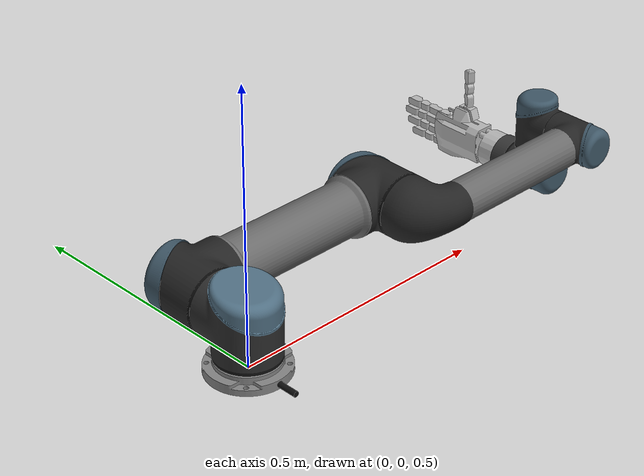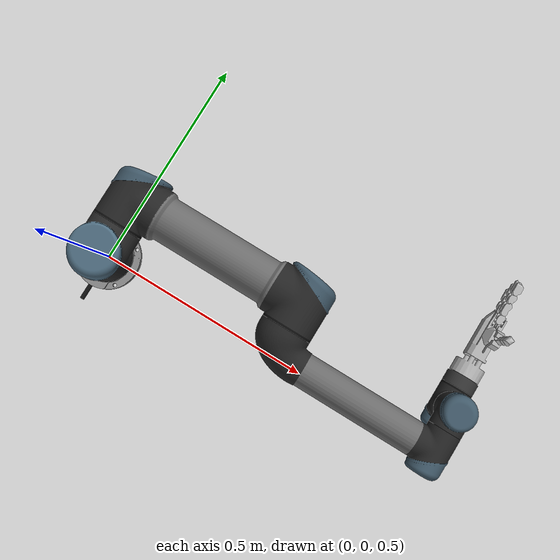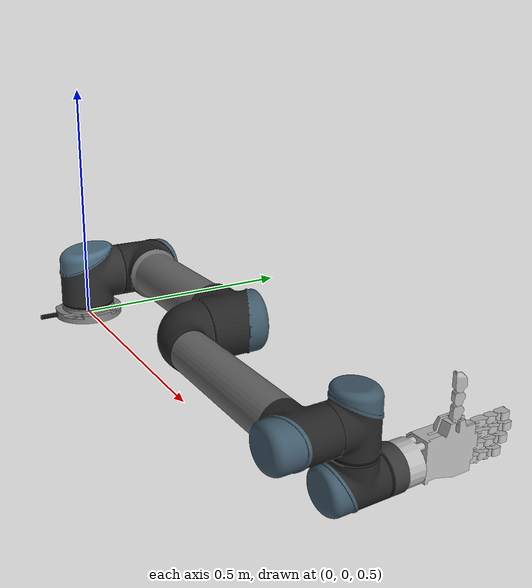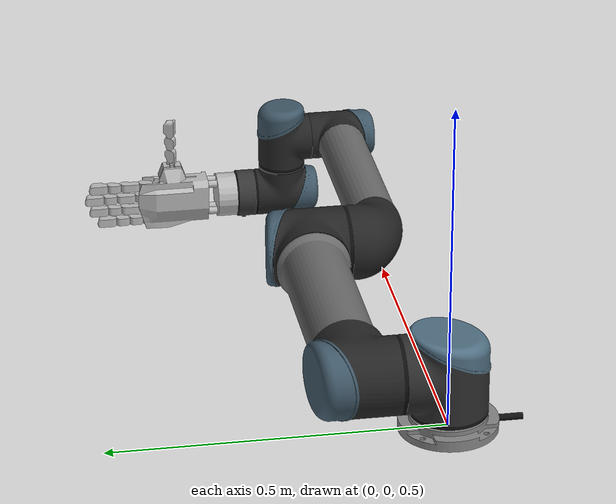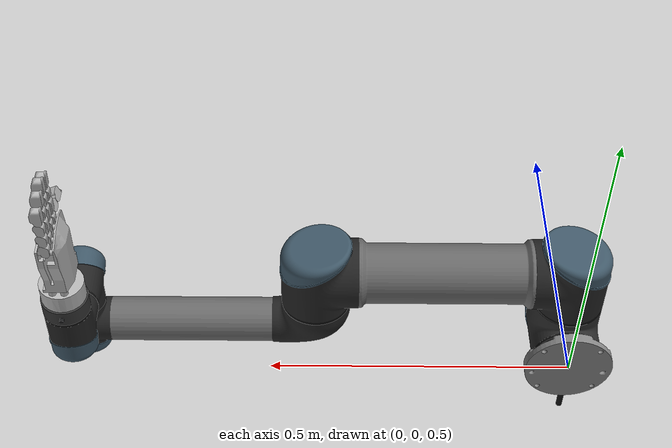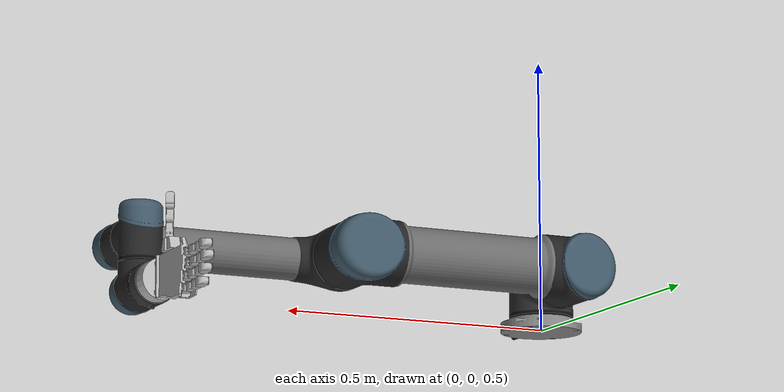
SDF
<sdf version='1.6'>
  <model name='ur5_qb'>
    <link name='base_link'>
      <pose frame=''>0 0 0.5 0 -0 0</pose>
      <inertial>
        <pose frame=''>0 0 0 0 -0 0</pose>
        <mass>4</mass>
        <inertia>
          <ixx>0.00443333</ixx>
          <ixy>0</ixy>
          <ixz>0</ixz>
          <iyy>0.00443333</iyy>
          <iyz>0</iyz>
          <izz>0.0072</izz>
        </inertia>
      </inertial>
      <collision name='base_link_collision'>
        <pose frame=''>0 0 0 0 -0 0</pose>
        <geometry>
          <mesh>
            <scale>1 1 1</scale>
            <uri>model://ur_description/meshes/ur5/collision/base.stl</uri>
          </mesh>
        </geometry>
      </collision>
      <visual name='base_link_visual'>
        <pose frame=''>0 0 0 0 -0 0</pose>
        <geometry>
          <mesh>
            <scale>1 1 1</scale>
            <uri>model://ur_description/meshes/ur5/visual/base.dae</uri>
          </mesh>
        </geometry>
      </visual>
    </link>
    <joint name='world_to_robot' type='revolute'>
      <child>base_link</child>
      <parent>world</parent>
      <axis>
        <limit>
          <lower>0</lower>
          <upper>0</upper>
        </limit>
        <dynamics>
          <damping>0</damping>
          <friction>0</friction>
          <spring_reference>0</spring_reference>
          <spring_stiffness>0</spring_stiffness>
        </dynamics>
        <use_parent_model_frame>1</use_parent_model_frame>
        <xyz>0 0 1</xyz>
      </axis>
    </joint>
    <link name='shoulder_link'>
      <pose frame=''>0 0 0.589159 0 -0 0</pose>
      <inertial>
        <pose frame=''>0 0 0 0 -0 0</pose>
        <mass>3.7</mass>
        <inertia>
          <ixx>0.0102675</ixx>
          <ixy>0</ixy>
          <ixz>0</ixz>
          <iyy>0.0102675</iyy>
          <iyz>0</iyz>
          <izz>0.00666</izz>
        </inertia>
      </inertial>
      <collision name='shoulder_link_collision'>
        <pose frame=''>0 0 0 0 -0 0</pose>
        <geometry>
          <mesh>
            <scale>1 1 1</scale>
            <uri>model://ur_description/meshes/ur5/collision/shoulder.stl</uri>
          </mesh>
        </geometry>
        <surface>
          <contact>
            <ode/>
          </contact>
          <friction>
            <ode/>
          </friction>
        </surface>
      </collision>
      <visual name='shoulder_link_visual'>
        <pose frame=''>0 0 0 0 -0 0</pose>
        <geometry>
          <mesh>
            <scale>1 1 1</scale>
            <uri>model://ur_description/meshes/ur5/visual/shoulder.dae</uri>
          </mesh>
        </geometry>
        <material>
          <script>
            <uri>__default__</uri>
            <name>__default__</name>
          </script>
        </material>
      </visual>
      <gravity>1</gravity>
      <velocity_decay/>
      <self_collide>1</self_collide>
    </link>
    <joint name='shoulder_pan_joint' type='revolute'>
      <child>shoulder_link</child>
      <parent>base_link</parent>
      <axis>
        <xyz>0 0 1</xyz>
        <limit>
          <lower>-6.28319</lower>
          <upper>6.28319</upper>
          <effort>150</effort>
          <velocity>3.15</velocity>
        </limit>
        <dynamics>
          <damping>0</damping>
          <friction>0</friction>
          <spring_reference>0</spring_reference>
          <spring_stiffness>0</spring_stiffness>
        </dynamics>
        <use_parent_model_frame>1</use_parent_model_frame>
      </axis>
    </joint>
    <link name='upper_arm_link'>
      <pose frame=''>0 0.13585 0.589159 3.14159 1.57079 3.14159</pose>
      <inertial>
        <pose frame=''>0 0 0.28 0 -0 0</pose>
        <mass>8.393</mass>
        <inertia>
          <ixx>0.226891</ixx>
          <ixy>0</ixy>
          <ixz>0</ixz>
          <iyy>0.226891</iyy>
          <iyz>0</iyz>
          <izz>0.0151074</izz>
        </inertia>
      </inertial>
      <collision name='upper_arm_link_collision'>
        <pose frame=''>0 0 0 0 -0 0</pose>
        <geometry>
          <mesh>
            <scale>1 1 1</scale>
            <uri>model://ur_description/meshes/ur5/collision/upperarm.stl</uri>
          </mesh>
        </geometry>
        <surface>
          <contact>
            <ode/>
          </contact>
          <friction>
            <ode/>
          </friction>
        </surface>
      </collision>
      <visual name='upper_arm_link_visual'>
        <pose frame=''>0 0 0 0 -0 0</pose>
        <geometry>
          <mesh>
            <scale>1 1 1</scale>
            <uri>model://ur_description/meshes/ur5/visual/upperarm.dae</uri>
          </mesh>
        </geometry>
        <material>
          <script>
            <uri>__default__</uri>
            <name>__default__</name>
          </script>
        </material>
      </visual>
      <gravity>1</gravity>
      <velocity_decay/>
      <self_collide>1</self_collide>
    </link>
    <joint name='shoulder_lift_joint' type='revolute'>
      <child>upper_arm_link</child>
      <parent>shoulder_link</parent>
      <axis>
        <xyz>0 1 0</xyz>
        <limit>
          <lower>-6.28319</lower>
          <upper>6.28319</upper>
          <effort>150</effort>
          <velocity>3.15</velocity>
        </limit>
        <dynamics>
          <damping>0</damping>
          <friction>0</friction>
          <spring_reference>0</spring_reference>
          <spring_stiffness>0</spring_stiffness>
        </dynamics>
        <use_parent_model_frame>1</use_parent_model_frame>
      </axis>
    </joint>
    <link name='forearm_link'>
      <pose frame=''>0.425 0.01615 0.589159 3.14159 1.57079 3.14159</pose>
      <inertial>
        <pose frame=''>0 0 0.196125 0 -0 0</pose>
        <mass>2.275</mass>
        <inertia>
          <ixx>0.0312168</ixx>
          <ixy>0</ixy>
          <ixz>0</ixz>
          <iyy>0.0312168</iyy>
          <iyz>0</iyz>
          <izz>0.004095</izz>
        </inertia>
      </inertial>
      <collision name='forearm_link_collision'>
        <pose frame=''>0 0 0 0 -0 0</pose>
        <geometry>
          <mesh>
            <scale>1 1 1</scale>
            <uri>model://ur_description/meshes/ur5/collision/forearm.stl</uri>
          </mesh>
        </geometry>
        <surface>
          <contact>
            <ode/>
          </contact>
          <friction>
            <ode/>
          </friction>
        </surface>
      </collision>
      <visual name='forearm_link_visual'>
        <pose frame=''>0 0 0 0 -0 0</pose>
        <geometry>
          <mesh>
            <scale>1 1 1</scale>
            <uri>model://ur_description/meshes/ur5/visual/forearm.dae</uri>
          </mesh>
        </geometry>
        <material>
          <script>
            <uri>__default__</uri>
            <name>__default__</name>
          </script>
        </material>
      </visual>
      <gravity>1</gravity>
      <velocity_decay/>
      <self_collide>1</self_collide>
    </link>
    <joint name='elbow_joint' type='revolute'>
      <child>forearm_link</child>
      <parent>upper_arm_link</parent>
      <axis>
        <xyz>0 1 0</xyz>
        <limit>
          <lower>-3.14159</lower>
          <upper>3.14159</upper>
          <effort>150</effort>
          <velocity>3.15</velocity>
        </limit>
        <dynamics>
          <damping>0</damping>
          <friction>0</friction>
          <spring_reference>0</spring_reference>
          <spring_stiffness>0</spring_stiffness>
        </dynamics>
        <use_parent_model_frame>1</use_parent_model_frame>
      </axis>
    </joint>
    <link name='wrist_1_link'>
      <pose frame=''>0.81725 0.01615 0.589159 3.14159 0 3.14159</pose>
      <inertial>
        <pose frame=''>0 0.093 0 0 -0 0</pose>
        <mass>1.219</mass>
        <inertia>
          <ixx>0.0025599</ixx>
          <ixy>0</ixy>
          <ixz>0</ixz>
          <iyy>0.0025599</iyy>
          <iyz>0</iyz>
          <izz>0.0021942</izz>
        </inertia>
      </inertial>
      <collision name='wrist_1_link_collision'>
        <pose frame=''>0 0 0 0 -0 0</pose>
        <geometry>
          <mesh>
            <scale>1 1 1</scale>
            <uri>model://ur_description/meshes/ur5/collision/wrist1.stl</uri>
          </mesh>
        </geometry>
        <surface>
          <contact>
            <ode/>
          </contact>
          <friction>
            <ode/>
          </friction>
        </surface>
      </collision>
      <visual name='wrist_1_link_visual'>
        <pose frame=''>0 0 0 0 -0 0</pose>
        <geometry>
          <mesh>
            <scale>1 1 1</scale>
            <uri>model://ur_description/meshes/ur5/visual/wrist1.dae</uri>
          </mesh>
        </geometry>
        <material>
          <script>
            <uri>__default__</uri>
            <name>__default__</name>
          </script>
        </material>
      </visual>
      <gravity>1</gravity>
      <velocity_decay/>
      <self_collide>1</self_collide>
    </link>
    <joint name='wrist_1_joint' type='revolute'>
      <child>wrist_1_link</child>
      <parent>forearm_link</parent>
      <axis>
        <xyz>0 1 0</xyz>
        <limit>
          <lower>-6.28319</lower>
          <upper>6.28319</upper>
          <effort>28</effort>
          <velocity>3.2</velocity>
        </limit>
        <dynamics>
          <damping>0</damping>
          <friction>0</friction>
          <spring_reference>0</spring_reference>
          <spring_stiffness>0</spring_stiffness>
        </dynamics>
        <use_parent_model_frame>1</use_parent_model_frame>
      </axis>
    </joint>
    <link name='wrist_2_link'>
      <pose frame=''>0.81725 0.10915 0.589159 3.14159 0 3.14159</pose>
      <inertial>
        <pose frame=''>0 0 0.09465 0 -0 0</pose>
        <mass>1.219</mass>
        <inertia>
          <ixx>0.0025599</ixx>
          <ixy>0</ixy>
          <ixz>0</ixz>
          <iyy>0.0025599</iyy>
          <iyz>0</iyz>
          <izz>0.0021942</izz>
        </inertia>
      </inertial>
      <collision name='wrist_2_link_collision'>
        <pose frame=''>0 0 0 0 -0 0</pose>
        <geometry>
          <mesh>
            <scale>1 1 1</scale>
            <uri>model://ur_description/meshes/ur5/collision/wrist2.stl</uri>
          </mesh>
        </geometry>
        <surface>
          <contact>
            <ode/>
          </contact>
          <friction>
            <ode/>
          </friction>
        </surface>
      </collision>
      <visual name='wrist_2_link_visual'>
        <pose frame=''>0 0 0 0 -0 0</pose>
        <geometry>
          <mesh>
            <scale>1 1 1</scale>
            <uri>model://ur_description/meshes/ur5/visual/wrist2.dae</uri>
          </mesh>
        </geometry>
        <material>
          <script>
            <uri>__default__</uri>
            <name>__default__</name>
          </script>
        </material>
      </visual>
      <gravity>1</gravity>
      <velocity_decay/>
      <self_collide>1</self_collide>
    </link>
    <joint name='wrist_2_joint' type='revolute'>
      <child>wrist_2_link</child>
      <parent>wrist_1_link</parent>
      <axis>
        <xyz>0 0 -1</xyz>
        <limit>
          <lower>-6.28319</lower>
          <upper>6.28319</upper>
          <effort>28</effort>
          <velocity>3.2</velocity>
        </limit>
        <dynamics>
          <damping>0</damping>
          <friction>0</friction>
          <spring_reference>0</spring_reference>
          <spring_stiffness>0</spring_stiffness>
        </dynamics>
        <use_parent_model_frame>1</use_parent_model_frame>
      </axis>
    </joint>
    <link name='wrist_3_link'>
      <pose frame=''>0.81725 0.10915 0.494509 3.14159 0 3.14159</pose>
      <inertial>
        <pose frame=''>-0.033263 0.162595 -0.002362 1.5708 -0 0</pose>
        <mass>0.6979</mass>
        <inertia>
          <ixx>0.00564227</ixx>
          <ixy>-5.17913e-05</ixy>
          <ixz>-0.00194434</ixz>
          <iyy>0.00656339</iyy>
          <iyz>-0.000138067</iyz>
          <izz>0.00155054</izz>
        </inertia>
      </inertial>
      <collision name='wrist_3_link_collision'>
        <pose frame=''>0 0 0 0 -0 0</pose>
        <geometry>
          <mesh>
            <scale>1 1 1</scale>
            <uri>model://ur_description/meshes/ur5/collision/wrist3.stl</uri>
          </mesh>
        </geometry>
        <surface>
          <contact>
            <ode/>
          </contact>
          <friction>
            <ode/>
          </friction>
        </surface>
      </collision>
      <collision name='wrist_3_link_fixed_joint_lump__ee_link_collision_1'>
        <pose frame=''>-0 0.0723 0 0 -0 1.5708</pose>
        <geometry>
          <box>
            <size>0.01 0.01 0.01</size>
          </box>
        </geometry>
        <surface>
          <contact>
            <ode/>
          </contact>
          <friction>
            <ode/>
          </friction>
        </surface>
      </collision>
      <collision name='wrist_3_link_fixed_joint_lump__qbhand_base_link_collision_2'>
        <pose frame=''>0 0.0823 0 3.14159 1.57079 -1.57079</pose>
        <geometry>
          <mesh>
            <scale>0.001 0.001 0.001</scale>
            <uri>model://qb_hand_description/meshes/flange_iso_04.stl</uri>
          </mesh>
        </geometry>
      </collision>
      <collision name='wrist_3_link_fixed_joint_lump__qbhand_palm_link_collision_3'>
        <pose frame=''>-0.0145 0.226304 -0.004385 3.14159 -1.57079 -3.14159</pose>
        <geometry>
          <mesh>
            <scale>0.001 0.001 0.001</scale>
            <uri>model://qb_hand_description/meshes/palm_pinch_l.stl</uri>
          </mesh>
        </geometry>
      </collision>
      <visual name='wrist_3_link_visual'>
        <pose frame=''>0 0 0 0 -0 0</pose>
        <geometry>
          <mesh>
            <scale>1 1 1</scale>
            <uri>model://ur_description/meshes/ur5/visual/wrist3.dae</uri>
          </mesh>
        </geometry>
        <material>
          <script>
            <uri>__default__</uri>
            <name>__default__</name>
          </script>
        </material>
      </visual>
      <visual name='wrist_3_link_fixed_joint_lump__qbhand_base_link_visual_1'>
        <pose frame=''>0 0.0823 0 3.14159 1.57079 -1.57079</pose>
        <geometry>
          <mesh>
            <scale>0.001 0.001 0.001</scale>
            <uri>model://qb_hand_description/meshes/flange_iso_04.stl</uri>
          </mesh>
        </geometry>
      </visual>
      <visual name='wrist_3_link_fixed_joint_lump__qbhand_palm_link_visual_2'>
        <pose frame=''>-0.0145 0.226304 -0.004385 3.14159 -1.57079 -3.14159</pose>
        <geometry>
          <mesh>
            <scale>0.001 0.001 0.001</scale>
            <uri>model://qb_hand_description/meshes/palm_pinch_l.stl</uri>
          </mesh>
        </geometry>
      </visual>
      <velocity_decay/>
      <gravity>1</gravity>
      <velocity_decay/>
      <self_collide>1</self_collide>
    </link>
    <joint name='wrist_3_joint' type='revolute'>
      <child>wrist_3_link</child>
      <parent>wrist_2_link</parent>
      <axis>
        <xyz>0 1 0</xyz>
        <limit>
          <lower>-6.28319</lower>
          <upper>6.28319</upper>
          <effort>28</effort>
          <velocity>3.2</velocity>
        </limit>
        <dynamics>
          <damping>0</damping>
          <friction>0</friction>
          <spring_reference>0</spring_reference>
          <spring_stiffness>0</spring_stiffness>
        </dynamics>
        <use_parent_model_frame>1</use_parent_model_frame>
      </axis>
    </joint>
    <link name='qbhand_index_knuckle_link'>
      <pose frame=''>0.817724 0.328458 0.518878 -2.89619 -1.56751 2.89699</pose>
      <inertial>
        <pose frame=''>0 0 0 0 -0 0</pose>
        <mass>0.01</mass>
        <inertia>
          <ixx>1e-06</ixx>
          <ixy>0</ixy>
          <ixz>0</ixz>
          <iyy>1e-06</iyy>
          <iyz>0</iyz>
          <izz>1e-06</izz>
        </inertia>
      </inertial>
      <collision name='qbhand_index_knuckle_link_collision'>
        <pose frame=''>0 0 0 0 -0 0</pose>
        <geometry>
          <mesh>
            <scale>0.001 0.001 0.001</scale>
            <uri>model://qb_hand_description/meshes/ph_knuckle.stl</uri>
          </mesh>
        </geometry>
      </collision>
      <visual name='qbhand_index_knuckle_link_visual'>
        <pose frame=''>0 0 0 0 -0 0</pose>
        <geometry>
          <mesh>
            <scale>0.001 0.001 0.001</scale>
            <uri>model://qb_hand_description/meshes/ph_knuckle.stl</uri>
          </mesh>
        </geometry>
      </visual>
    </link>
    <joint name='qbhand_index_knuckle_joint' type='revolute'>
      <child>qbhand_index_knuckle_link</child>
      <parent>wrist_3_link</parent>
      <axis>
        <xyz>0.999995 0.000799 0.003185</xyz>
        <limit>
          <lower>-0.524</lower>
          <upper>0.524</upper>
          <effort>100</effort>
          <velocity>100</velocity>
        </limit>
        <dynamics>
          <damping>0</damping>
          <friction>0</friction>
          <spring_reference>0</spring_reference>
          <spring_stiffness>0</spring_stiffness>
        </dynamics>
        <use_parent_model_frame>1</use_parent_model_frame>
      </axis>
    </joint>
    <link name='qbhand_index_proximal_virtual_link'>
      <pose frame=''>0.817717 0.337458 0.51887 -0.003981 1e-06 1.5716</pose>
      <inertial>
        <pose frame=''>0 0 0 0 -0 0</pose>
        <mass>0.01</mass>
        <inertia>
          <ixx>1e-08</ixx>
          <ixy>0</ixy>
          <ixz>0</ixz>
          <iyy>1e-08</iyy>
          <iyz>0</iyz>
          <izz>1e-08</izz>
        </inertia>
      </inertial>
    </link>
    <joint name='qbhand_index_proximal_joint' type='revolute'>
      <child>qbhand_index_proximal_virtual_link</child>
      <parent>qbhand_index_knuckle_link</parent>
      <axis>
        <xyz>0.003981 2e-06 -0.999992</xyz>
        <limit>
          <lower>0</lower>
          <upper>0.785</upper>
          <effort>100</effort>
          <velocity>100</velocity>
        </limit>
        <dynamics>
          <damping>0</damping>
          <friction>0</friction>
          <spring_reference>0</spring_reference>
          <spring_stiffness>0</spring_stiffness>
        </dynamics>
        <use_parent_model_frame>1</use_parent_model_frame>
      </axis>
    </joint>
    <link name='qbhand_index_proximal_link'>
      <pose frame=''>0.817706 0.350458 0.51887 -0.003981 1e-06 1.5716</pose>
      <inertial>
        <pose frame=''>0 0 0 0 -0 0</pose>
        <mass>0.01</mass>
        <inertia>
          <ixx>1e-06</ixx>
          <ixy>0</ixy>
          <ixz>0</ixz>
          <iyy>1e-06</iyy>
          <iyz>0</iyz>
          <izz>1e-06</izz>
        </inertia>
      </inertial>
      <collision name='qbhand_index_proximal_link_collision'>
        <pose frame=''>0 0 0 0 -0 0</pose>
        <geometry>
          <mesh>
            <scale>0.001 0.001 0.001</scale>
            <uri>model://qb_hand_description/meshes/ph_medium.stl</uri>
          </mesh>
        </geometry>
      </collision>
      <visual name='qbhand_index_proximal_link_visual'>
        <pose frame=''>0 0 0 0 -0 0</pose>
        <geometry>
          <mesh>
            <scale>0.001 0.001 0.001</scale>
            <uri>model://qb_hand_description/meshes/ph_medium.stl</uri>
          </mesh>
        </geometry>
      </visual>
    </link>
    <joint name='qbhand_index_proximal_virtual_joint' type='revolute'>
      <child>qbhand_index_proximal_link</child>
      <parent>qbhand_index_proximal_virtual_link</parent>
      <axis>
        <xyz>0.003981 2e-06 -0.999992</xyz>
        <limit>
          <lower>0</lower>
          <upper>0.785</upper>
          <effort>100</effort>
          <velocity>100</velocity>
        </limit>
        <dynamics>
          <damping>0</damping>
          <friction>0</friction>
          <spring_reference>0</spring_reference>
          <spring_stiffness>0</spring_stiffness>
        </dynamics>
        <use_parent_model_frame>1</use_parent_model_frame>
      </axis>
    </joint>
    <link name='qbhand_index_middle_virtual_link'>
      <pose frame=''>0.817693 0.367458 0.51887 -0.003981 1e-06 1.5716</pose>
      <inertial>
        <pose frame=''>0 0 0 0 -0 0</pose>
        <mass>0.01</mass>
        <inertia>
          <ixx>1e-08</ixx>
          <ixy>0</ixy>
          <ixz>0</ixz>
          <iyy>1e-08</iyy>
          <iyz>0</iyz>
          <izz>1e-08</izz>
        </inertia>
      </inertial>
    </link>
    <joint name='qbhand_index_middle_joint' type='revolute'>
      <child>qbhand_index_middle_virtual_link</child>
      <parent>qbhand_index_proximal_link</parent>
      <axis>
        <xyz>0.003981 2e-06 -0.999992</xyz>
        <limit>
          <lower>0</lower>
          <upper>0.785</upper>
          <effort>100</effort>
          <velocity>100</velocity>
        </limit>
        <dynamics>
          <damping>0</damping>
          <friction>0</friction>
          <spring_reference>0</spring_reference>
          <spring_stiffness>0</spring_stiffness>
        </dynamics>
        <use_parent_model_frame>1</use_parent_model_frame>
      </axis>
    </joint>
    <link name='qbhand_index_middle_link'>
      <pose frame=''>0.817682 0.380458 0.51887 -0.003981 1e-06 1.5716</pose>
      <inertial>
        <pose frame=''>0 0 0 0 -0 0</pose>
        <mass>0.01</mass>
        <inertia>
          <ixx>1e-06</ixx>
          <ixy>0</ixy>
          <ixz>0</ixz>
          <iyy>1e-06</iyy>
          <iyz>0</iyz>
          <izz>1e-06</izz>
        </inertia>
      </inertial>
      <collision name='qbhand_index_middle_link_collision'>
        <pose frame=''>0 0 0 0 -0 0</pose>
        <geometry>
          <mesh>
            <scale>0.001 0.001 0.001</scale>
            <uri>model://qb_hand_description/meshes/ph_small.stl</uri>
          </mesh>
        </geometry>
      </collision>
      <visual name='qbhand_index_middle_link_visual'>
        <pose frame=''>0 0 0 0 -0 0</pose>
        <geometry>
          <mesh>
            <scale>0.001 0.001 0.001</scale>
            <uri>model://qb_hand_description/meshes/ph_small.stl</uri>
          </mesh>
        </geometry>
      </visual>
    </link>
    <joint name='qbhand_index_middle_virtual_joint' type='revolute'>
      <child>qbhand_index_middle_link</child>
      <parent>qbhand_index_middle_virtual_link</parent>
      <axis>
        <xyz>0.003981 2e-06 -0.999992</xyz>
        <limit>
          <lower>0</lower>
          <upper>0.785</upper>
          <effort>100</effort>
          <velocity>100</velocity>
        </limit>
        <dynamics>
          <damping>0</damping>
          <friction>0</friction>
          <spring_reference>0</spring_reference>
          <spring_stiffness>0</spring_stiffness>
        </dynamics>
        <use_parent_model_frame>1</use_parent_model_frame>
      </axis>
    </joint>
    <link name='qbhand_index_distal_virtual_link'>
      <pose frame=''>0.817675 0.389458 0.51887 -0.003981 1e-06 1.5716</pose>
      <inertial>
        <pose frame=''>0 0 0 0 -0 0</pose>
        <mass>0.01</mass>
        <inertia>
          <ixx>1e-08</ixx>
          <ixy>0</ixy>
          <ixz>0</ixz>
          <iyy>1e-08</iyy>
          <iyz>0</iyz>
          <izz>1e-08</izz>
        </inertia>
      </inertial>
    </link>
    <joint name='qbhand_index_distal_joint' type='revolute'>
      <child>qbhand_index_distal_virtual_link</child>
      <parent>qbhand_index_middle_link</parent>
      <axis>
        <xyz>0.003981 2e-06 -0.999992</xyz>
        <limit>
          <lower>0</lower>
          <upper>0.785</upper>
          <effort>100</effort>
          <velocity>100</velocity>
        </limit>
        <dynamics>
          <damping>0</damping>
          <friction>0</friction>
          <spring_reference>0</spring_reference>
          <spring_stiffness>0</spring_stiffness>
        </dynamics>
        <use_parent_model_frame>1</use_parent_model_frame>
      </axis>
    </joint>
    <link name='qbhand_index_distal_link'>
      <pose frame=''>0.817665 0.402458 0.51887 -0.003981 1e-06 1.5716</pose>
      <inertial>
        <pose frame=''>0 0 0 0 -0 0</pose>
        <mass>0.01</mass>
        <inertia>
          <ixx>1e-06</ixx>
          <ixy>0</ixy>
          <ixz>0</ixz>
          <iyy>1e-06</iyy>
          <iyz>0</iyz>
          <izz>1e-06</izz>
        </inertia>
      </inertial>
      <collision name='qbhand_index_distal_link_collision'>
        <pose frame=''>0 0 0 0 -0 0</pose>
        <geometry>
          <mesh>
            <scale>0.001 0.001 0.001</scale>
            <uri>model://qb_hand_description/meshes/ph_distal.stl</uri>
          </mesh>
        </geometry>
      </collision>
      <visual name='qbhand_index_distal_link_visual'>
        <pose frame=''>0 0 0 0 -0 0</pose>
        <geometry>
          <mesh>
            <scale>0.001 0.001 0.001</scale>
            <uri>model://qb_hand_description/meshes/ph_distal.stl</uri>
          </mesh>
        </geometry>
      </visual>
    </link>
    <joint name='qbhand_index_distal_virtual_joint' type='revolute'>
      <child>qbhand_index_distal_link</child>
      <parent>qbhand_index_distal_virtual_link</parent>
      <axis>
        <xyz>0.003981 2e-06 -0.999992</xyz>
        <limit>
          <lower>0</lower>
          <upper>0.785</upper>
          <effort>100</effort>
          <velocity>100</velocity>
        </limit>
        <dynamics>
          <damping>0</damping>
          <friction>0</friction>
          <spring_reference>0</spring_reference>
          <spring_stiffness>0</spring_stiffness>
        </dynamics>
        <use_parent_model_frame>1</use_parent_model_frame>
      </axis>
    </joint>
    <link name='qbhand_little_knuckle_link'>
      <pose frame=''>0.817823 0.323411 0.458882 -2.89619 -1.56751 2.89699</pose>
      <inertial>
        <pose frame=''>0 0 0 0 -0 0</pose>
        <mass>0.01</mass>
        <inertia>
          <ixx>1e-06</ixx>
          <ixy>0</ixy>
          <ixz>0</ixz>
          <iyy>1e-06</iyy>
          <iyz>0</iyz>
          <izz>1e-06</izz>
        </inertia>
      </inertial>
      <collision name='qbhand_little_knuckle_link_collision'>
        <pose frame=''>0 0 0 0 -0 0</pose>
        <geometry>
          <mesh>
            <scale>0.001 0.001 0.001</scale>
            <uri>model://qb_hand_description/meshes/ph_knuckle.stl</uri>
          </mesh>
        </geometry>
      </collision>
      <visual name='qbhand_little_knuckle_link_visual'>
        <pose frame=''>0 0 0 0 -0 0</pose>
        <geometry>
          <mesh>
            <scale>0.001 0.001 0.001</scale>
            <uri>model://qb_hand_description/meshes/ph_knuckle.stl</uri>
          </mesh>
        </geometry>
      </visual>
    </link>
    <joint name='qbhand_little_knuckle_joint' type='revolute'>
      <child>qbhand_little_knuckle_link</child>
      <parent>wrist_3_link</parent>
      <axis>
        <xyz>0.999995 0.000799 0.003185</xyz>
        <limit>
          <lower>-0.524</lower>
          <upper>0.524</upper>
          <effort>100</effort>
          <velocity>100</velocity>
        </limit>
        <dynamics>
          <damping>0</damping>
          <friction>0</friction>
          <spring_reference>0</spring_reference>
          <spring_stiffness>0</spring_stiffness>
        </dynamics>
        <use_parent_model_frame>1</use_parent_model_frame>
      </axis>
    </joint>
    <link name='qbhand_little_proximal_virtual_link'>
      <pose frame=''>0.817816 0.332411 0.458874 -0.003981 1e-06 1.5716</pose>
      <inertial>
        <pose frame=''>0 0 0 0 -0 0</pose>
        <mass>0.01</mass>
        <inertia>
          <ixx>1e-08</ixx>
          <ixy>0</ixy>
          <ixz>0</ixz>
          <iyy>1e-08</iyy>
          <iyz>0</iyz>
          <izz>1e-08</izz>
        </inertia>
      </inertial>
    </link>
    <joint name='qbhand_little_proximal_joint' type='revolute'>
      <child>qbhand_little_proximal_virtual_link</child>
      <parent>qbhand_little_knuckle_link</parent>
      <axis>
        <xyz>0.003981 2e-06 -0.999992</xyz>
        <limit>
          <lower>0</lower>
          <upper>0.785</upper>
          <effort>100</effort>
          <velocity>100</velocity>
        </limit>
        <dynamics>
          <damping>0</damping>
          <friction>0</friction>
          <spring_reference>0</spring_reference>
          <spring_stiffness>0</spring_stiffness>
        </dynamics>
        <use_parent_model_frame>1</use_parent_model_frame>
      </axis>
    </joint>
    <link name='qbhand_little_proximal_link'>
      <pose frame=''>0.817806 0.345411 0.458874 -0.003981 1e-06 1.5716</pose>
      <inertial>
        <pose frame=''>0 0 0 0 -0 0</pose>
        <mass>0.01</mass>
        <inertia>
          <ixx>1e-06</ixx>
          <ixy>0</ixy>
          <ixz>0</ixz>
          <iyy>1e-06</iyy>
          <iyz>0</iyz>
          <izz>1e-06</izz>
        </inertia>
      </inertial>
      <collision name='qbhand_little_proximal_link_collision'>
        <pose frame=''>0 0 0 0 -0 0</pose>
        <geometry>
          <mesh>
            <scale>0.001 0.001 0.001</scale>
            <uri>model://qb_hand_description/meshes/ph_small.stl</uri>
          </mesh>
        </geometry>
      </collision>
      <visual name='qbhand_little_proximal_link_visual'>
        <pose frame=''>0 0 0 0 -0 0</pose>
        <geometry>
          <mesh>
            <scale>0.001 0.001 0.001</scale>
            <uri>model://qb_hand_description/meshes/ph_small.stl</uri>
          </mesh>
        </geometry>
      </visual>
    </link>
    <joint name='qbhand_little_proximal_virtual_joint' type='revolute'>
      <child>qbhand_little_proximal_link</child>
      <parent>qbhand_little_proximal_virtual_link</parent>
      <axis>
        <xyz>0.003981 2e-06 -0.999992</xyz>
        <limit>
          <lower>0</lower>
          <upper>0.785</upper>
          <effort>100</effort>
          <velocity>100</velocity>
        </limit>
        <dynamics>
          <damping>0</damping>
          <friction>0</friction>
          <spring_reference>0</spring_reference>
          <spring_stiffness>0</spring_stiffness>
        </dynamics>
        <use_parent_model_frame>1</use_parent_model_frame>
      </axis>
    </joint>
    <link name='qbhand_little_middle_virtual_link'>
      <pose frame=''>0.817799 0.354411 0.458874 -0.003981 1e-06 1.5716</pose>
      <inertial>
        <pose frame=''>0 0 0 0 -0 0</pose>
        <mass>0.01</mass>
        <inertia>
          <ixx>1e-08</ixx>
          <ixy>0</ixy>
          <ixz>0</ixz>
          <iyy>1e-08</iyy>
          <iyz>0</iyz>
          <izz>1e-08</izz>
        </inertia>
      </inertial>
    </link>
    <joint name='qbhand_little_middle_joint' type='revolute'>
      <child>qbhand_little_middle_virtual_link</child>
      <parent>qbhand_little_proximal_link</parent>
      <axis>
        <xyz>0.003981 2e-06 -0.999992</xyz>
        <limit>
          <lower>0</lower>
          <upper>0.785</upper>
          <effort>100</effort>
          <velocity>100</velocity>
        </limit>
        <dynamics>
          <damping>0</damping>
          <friction>0</friction>
          <spring_reference>0</spring_reference>
          <spring_stiffness>0</spring_stiffness>
        </dynamics>
        <use_parent_model_frame>1</use_parent_model_frame>
      </axis>
    </joint>
    <link name='qbhand_little_middle_link'>
      <pose frame=''>0.817788 0.367411 0.458874 -0.003981 1e-06 1.5716</pose>
      <inertial>
        <pose frame=''>0 0 0 0 -0 0</pose>
        <mass>0.01</mass>
        <inertia>
          <ixx>1e-06</ixx>
          <ixy>0</ixy>
          <ixz>0</ixz>
          <iyy>1e-06</iyy>
          <iyz>0</iyz>
          <izz>1e-06</izz>
        </inertia>
      </inertial>
      <collision name='qbhand_little_middle_link_collision'>
        <pose frame=''>0 0 0 0 -0 0</pose>
        <geometry>
          <mesh>
            <scale>0.001 0.001 0.001</scale>
            <uri>model://qb_hand_description/meshes/ph_small.stl</uri>
          </mesh>
        </geometry>
      </collision>
      <visual name='qbhand_little_middle_link_visual'>
        <pose frame=''>0 0 0 0 -0 0</pose>
        <geometry>
          <mesh>
            <scale>0.001 0.001 0.001</scale>
            <uri>model://qb_hand_description/meshes/ph_small.stl</uri>
          </mesh>
        </geometry>
      </visual>
    </link>
    <joint name='qbhand_little_middle_virtual_joint' type='revolute'>
      <child>qbhand_little_middle_link</child>
      <parent>qbhand_little_middle_virtual_link</parent>
      <axis>
        <xyz>0.003981 2e-06 -0.999992</xyz>
        <limit>
          <lower>0</lower>
          <upper>0.785</upper>
          <effort>100</effort>
          <velocity>100</velocity>
        </limit>
        <dynamics>
          <damping>0</damping>
          <friction>0</friction>
          <spring_reference>0</spring_reference>
          <spring_stiffness>0</spring_stiffness>
        </dynamics>
        <use_parent_model_frame>1</use_parent_model_frame>
      </axis>
    </joint>
    <link name='qbhand_little_distal_virtual_link'>
      <pose frame=''>0.817781 0.376411 0.458874 -0.003981 1e-06 1.5716</pose>
      <inertial>
        <pose frame=''>0 0 0 0 -0 0</pose>
        <mass>0.01</mass>
        <inertia>
          <ixx>1e-08</ixx>
          <ixy>0</ixy>
          <ixz>0</ixz>
          <iyy>1e-08</iyy>
          <iyz>0</iyz>
          <izz>1e-08</izz>
        </inertia>
      </inertial>
    </link>
    <joint name='qbhand_little_distal_joint' type='revolute'>
      <child>qbhand_little_distal_virtual_link</child>
      <parent>qbhand_little_middle_link</parent>
      <axis>
        <xyz>0.003981 2e-06 -0.999992</xyz>
        <limit>
          <lower>0</lower>
          <upper>0.785</upper>
          <effort>100</effort>
          <velocity>100</velocity>
        </limit>
        <dynamics>
          <damping>0</damping>
          <friction>0</friction>
          <spring_reference>0</spring_reference>
          <spring_stiffness>0</spring_stiffness>
        </dynamics>
        <use_parent_model_frame>1</use_parent_model_frame>
      </axis>
    </joint>
    <link name='qbhand_little_distal_link'>
      <pose frame=''>0.817771 0.389411 0.458874 -0.003981 1e-06 1.5716</pose>
      <inertial>
        <pose frame=''>0 0 0 0 -0 0</pose>
        <mass>0.01</mass>
        <inertia>
          <ixx>1e-06</ixx>
          <ixy>0</ixy>
          <ixz>0</ixz>
          <iyy>1e-06</iyy>
          <iyz>0</iyz>
          <izz>1e-06</izz>
        </inertia>
      </inertial>
      <collision name='qbhand_little_distal_link_collision'>
        <pose frame=''>0 0 0 0 -0 0</pose>
        <geometry>
          <mesh>
            <scale>0.001 0.001 0.001</scale>
            <uri>model://qb_hand_description/meshes/ph_distal.stl</uri>
          </mesh>
        </geometry>
      </collision>
      <visual name='qbhand_little_distal_link_visual'>
        <pose frame=''>0 0 0 0 -0 0</pose>
        <geometry>
          <mesh>
            <scale>0.001 0.001 0.001</scale>
            <uri>model://qb_hand_description/meshes/ph_distal.stl</uri>
          </mesh>
        </geometry>
      </visual>
    </link>
    <joint name='qbhand_little_distal_virtual_joint' type='revolute'>
      <child>qbhand_little_distal_link</child>
      <parent>qbhand_little_distal_virtual_link</parent>
      <axis>
        <xyz>0.003981 2e-06 -0.999992</xyz>
        <limit>
          <lower>0</lower>
          <upper>0.785</upper>
          <effort>100</effort>
          <velocity>100</velocity>
        </limit>
        <dynamics>
          <damping>0</damping>
          <friction>0</friction>
          <spring_reference>0</spring_reference>
          <spring_stiffness>0</spring_stiffness>
        </dynamics>
        <use_parent_model_frame>1</use_parent_model_frame>
      </axis>
    </joint>
    <link name='qbhand_middle_knuckle_link'>
      <pose frame=''>0.81775 0.335442 0.498872 -2.89619 -1.56751 2.89699</pose>
      <inertial>
        <pose frame=''>0 0 0 0 -0 0</pose>
        <mass>0.01</mass>
        <inertia>
          <ixx>1e-06</ixx>
          <ixy>0</ixy>
          <ixz>0</ixz>
          <iyy>1e-06</iyy>
          <iyz>0</iyz>
          <izz>1e-06</izz>
        </inertia>
      </inertial>
      <collision name='qbhand_middle_knuckle_link_collision'>
        <pose frame=''>0 0 0 0 -0 0</pose>
        <geometry>
          <mesh>
            <scale>0.001 0.001 0.001</scale>
            <uri>model://qb_hand_description/meshes/ph_knuckle.stl</uri>
          </mesh>
        </geometry>
      </collision>
      <visual name='qbhand_middle_knuckle_link_visual'>
        <pose frame=''>0 0 0 0 -0 0</pose>
        <geometry>
          <mesh>
            <scale>0.001 0.001 0.001</scale>
            <uri>model://qb_hand_description/meshes/ph_knuckle.stl</uri>
          </mesh>
        </geometry>
      </visual>
    </link>
    <joint name='qbhand_middle_knuckle_joint' type='revolute'>
      <child>qbhand_middle_knuckle_link</child>
      <parent>wrist_3_link</parent>
      <axis>
        <xyz>0.999995 0.000799 0.003185</xyz>
        <limit>
          <lower>-0.524</lower>
          <upper>0.524</upper>
          <effort>100</effort>
          <velocity>100</velocity>
        </limit>
        <dynamics>
          <damping>0</damping>
          <friction>0</friction>
          <spring_reference>0</spring_reference>
          <spring_stiffness>0</spring_stiffness>
        </dynamics>
        <use_parent_model_frame>1</use_parent_model_frame>
      </axis>
    </joint>
    <link name='qbhand_middle_proximal_virtual_link'>
      <pose frame=''>0.817743 0.344442 0.498865 -0.003981 1e-06 1.5716</pose>
      <inertial>
        <pose frame=''>0 0 0 0 -0 0</pose>
        <mass>0.01</mass>
        <inertia>
          <ixx>1e-08</ixx>
          <ixy>0</ixy>
          <ixz>0</ixz>
          <iyy>1e-08</iyy>
          <iyz>0</iyz>
          <izz>1e-08</izz>
        </inertia>
      </inertial>
    </link>
    <joint name='qbhand_middle_proximal_joint' type='revolute'>
      <child>qbhand_middle_proximal_virtual_link</child>
      <parent>qbhand_middle_knuckle_link</parent>
      <axis>
        <xyz>0.003981 2e-06 -0.999992</xyz>
        <limit>
          <lower>0</lower>
          <upper>0.785</upper>
          <effort>100</effort>
          <velocity>100</velocity>
        </limit>
        <dynamics>
          <damping>0</damping>
          <friction>0</friction>
          <spring_reference>0</spring_reference>
          <spring_stiffness>0</spring_stiffness>
        </dynamics>
        <use_parent_model_frame>1</use_parent_model_frame>
      </axis>
    </joint>
    <link name='qbhand_middle_proximal_link'>
      <pose frame=''>0.817732 0.357442 0.498865 -0.003981 1e-06 1.5716</pose>
      <inertial>
        <pose frame=''>0 0 0 0 -0 0</pose>
        <mass>0.01</mass>
        <inertia>
          <ixx>1e-06</ixx>
          <ixy>0</ixy>
          <ixz>0</ixz>
          <iyy>1e-06</iyy>
          <iyz>0</iyz>
          <izz>1e-06</izz>
        </inertia>
      </inertial>
      <collision name='qbhand_middle_proximal_link_collision'>
        <pose frame=''>0 0 0 0 -0 0</pose>
        <geometry>
          <mesh>
            <scale>0.001 0.001 0.001</scale>
            <uri>model://qb_hand_description/meshes/ph_medium.stl</uri>
          </mesh>
        </geometry>
      </collision>
      <visual name='qbhand_middle_proximal_link_visual'>
        <pose frame=''>0 0 0 0 -0 0</pose>
        <geometry>
          <mesh>
            <scale>0.001 0.001 0.001</scale>
            <uri>model://qb_hand_description/meshes/ph_medium.stl</uri>
          </mesh>
        </geometry>
      </visual>
    </link>
    <joint name='qbhand_middle_proximal_virtual_joint' type='revolute'>
      <child>qbhand_middle_proximal_link</child>
      <parent>qbhand_middle_proximal_virtual_link</parent>
      <axis>
        <xyz>0.003981 2e-06 -0.999992</xyz>
        <limit>
          <lower>0</lower>
          <upper>0.785</upper>
          <effort>100</effort>
          <velocity>100</velocity>
        </limit>
        <dynamics>
          <damping>0</damping>
          <friction>0</friction>
          <spring_reference>0</spring_reference>
          <spring_stiffness>0</spring_stiffness>
        </dynamics>
        <use_parent_model_frame>1</use_parent_model_frame>
      </axis>
    </joint>
    <link name='qbhand_middle_middle_virtual_link'>
      <pose frame=''>0.817719 0.374442 0.498865 -0.003981 1e-06 1.5716</pose>
      <inertial>
        <pose frame=''>0 0 0 0 -0 0</pose>
        <mass>0.01</mass>
        <inertia>
          <ixx>1e-08</ixx>
          <ixy>0</ixy>
          <ixz>0</ixz>
          <iyy>1e-08</iyy>
          <iyz>0</iyz>
          <izz>1e-08</izz>
        </inertia>
      </inertial>
    </link>
    <joint name='qbhand_middle_middle_joint' type='revolute'>
      <child>qbhand_middle_middle_virtual_link</child>
      <parent>qbhand_middle_proximal_link</parent>
      <axis>
        <xyz>0.003981 2e-06 -0.999992</xyz>
        <limit>
          <lower>0</lower>
          <upper>0.785</upper>
          <effort>100</effort>
          <velocity>100</velocity>
        </limit>
        <dynamics>
          <damping>0</damping>
          <friction>0</friction>
          <spring_reference>0</spring_reference>
          <spring_stiffness>0</spring_stiffness>
        </dynamics>
        <use_parent_model_frame>1</use_parent_model_frame>
      </axis>
    </joint>
    <link name='qbhand_middle_middle_link'>
      <pose frame=''>0.817709 0.387442 0.498865 -0.003981 1e-06 1.5716</pose>
      <inertial>
        <pose frame=''>0 0 0 0 -0 0</pose>
        <mass>0.01</mass>
        <inertia>
          <ixx>1e-06</ixx>
          <ixy>0</ixy>
          <ixz>0</ixz>
          <iyy>1e-06</iyy>
          <iyz>0</iyz>
          <izz>1e-06</izz>
        </inertia>
      </inertial>
      <collision name='qbhand_middle_middle_link_collision'>
        <pose frame=''>0 0 0 0 -0 0</pose>
        <geometry>
          <mesh>
            <scale>0.001 0.001 0.001</scale>
            <uri>model://qb_hand_description/meshes/ph_small.stl</uri>
          </mesh>
        </geometry>
      </collision>
      <visual name='qbhand_middle_middle_link_visual'>
        <pose frame=''>0 0 0 0 -0 0</pose>
        <geometry>
          <mesh>
            <scale>0.001 0.001 0.001</scale>
            <uri>model://qb_hand_description/meshes/ph_small.stl</uri>
          </mesh>
        </geometry>
      </visual>
    </link>
    <joint name='qbhand_middle_middle_virtual_joint' type='revolute'>
      <child>qbhand_middle_middle_link</child>
      <parent>qbhand_middle_middle_virtual_link</parent>
      <axis>
        <xyz>0.003981 2e-06 -0.999992</xyz>
        <limit>
          <lower>0</lower>
          <upper>0.785</upper>
          <effort>100</effort>
          <velocity>100</velocity>
        </limit>
        <dynamics>
          <damping>0</damping>
          <friction>0</friction>
          <spring_reference>0</spring_reference>
          <spring_stiffness>0</spring_stiffness>
        </dynamics>
        <use_parent_model_frame>1</use_parent_model_frame>
      </axis>
    </joint>
    <link name='qbhand_middle_distal_virtual_link'>
      <pose frame=''>0.817701 0.396442 0.498865 -0.003981 1e-06 1.5716</pose>
      <inertial>
        <pose frame=''>0 0 0 0 -0 0</pose>
        <mass>0.01</mass>
        <inertia>
          <ixx>1e-08</ixx>
          <ixy>0</ixy>
          <ixz>0</ixz>
          <iyy>1e-08</iyy>
          <iyz>0</iyz>
          <izz>1e-08</izz>
        </inertia>
      </inertial>
    </link>
    <joint name='qbhand_middle_distal_joint' type='revolute'>
      <child>qbhand_middle_distal_virtual_link</child>
      <parent>qbhand_middle_middle_link</parent>
      <axis>
        <xyz>0.003981 2e-06 -0.999992</xyz>
        <limit>
          <lower>0</lower>
          <upper>0.785</upper>
          <effort>100</effort>
          <velocity>100</velocity>
        </limit>
        <dynamics>
          <damping>0</damping>
          <friction>0</friction>
          <spring_reference>0</spring_reference>
          <spring_stiffness>0</spring_stiffness>
        </dynamics>
        <use_parent_model_frame>1</use_parent_model_frame>
      </axis>
    </joint>
    <link name='qbhand_middle_distal_link'>
      <pose frame=''>0.817691 0.409442 0.498865 -0.003981 1e-06 1.5716</pose>
      <inertial>
        <pose frame=''>0 0 0 0 -0 0</pose>
        <mass>0.01</mass>
        <inertia>
          <ixx>1e-06</ixx>
          <ixy>0</ixy>
          <ixz>0</ixz>
          <iyy>1e-06</iyy>
          <iyz>0</iyz>
          <izz>1e-06</izz>
        </inertia>
      </inertial>
      <collision name='qbhand_middle_distal_link_collision'>
        <pose frame=''>0 0 0 0 -0 0</pose>
        <geometry>
          <mesh>
            <scale>0.001 0.001 0.001</scale>
            <uri>model://qb_hand_description/meshes/ph_distal.stl</uri>
          </mesh>
        </geometry>
      </collision>
      <visual name='qbhand_middle_distal_link_visual'>
        <pose frame=''>0 0 0 0 -0 0</pose>
        <geometry>
          <mesh>
            <scale>0.001 0.001 0.001</scale>
            <uri>model://qb_hand_description/meshes/ph_distal.stl</uri>
          </mesh>
        </geometry>
      </visual>
    </link>
    <joint name='qbhand_middle_distal_virtual_joint' type='revolute'>
      <child>qbhand_middle_distal_link</child>
      <parent>qbhand_middle_distal_virtual_link</parent>
      <axis>
        <xyz>0.003981 2e-06 -0.999992</xyz>
        <limit>
          <lower>0</lower>
          <upper>0.785</upper>
          <effort>100</effort>
          <velocity>100</velocity>
        </limit>
        <dynamics>
          <damping>0</damping>
          <friction>0</friction>
          <spring_reference>0</spring_reference>
          <spring_stiffness>0</spring_stiffness>
        </dynamics>
        <use_parent_model_frame>1</use_parent_model_frame>
      </axis>
    </joint>
    <link name='qbhand_ring_knuckle_link'>
      <pose frame=''>0.817787 0.328426 0.478878 -2.89619 -1.56751 2.89699</pose>
      <inertial>
        <pose frame=''>0 0 0 0 -0 0</pose>
        <mass>0.01</mass>
        <inertia>
          <ixx>1e-06</ixx>
          <ixy>0</ixy>
          <ixz>0</ixz>
          <iyy>1e-06</iyy>
          <iyz>0</iyz>
          <izz>1e-06</izz>
        </inertia>
      </inertial>
      <collision name='qbhand_ring_knuckle_link_collision'>
        <pose frame=''>0 0 0 0 -0 0</pose>
        <geometry>
          <mesh>
            <scale>0.001 0.001 0.001</scale>
            <uri>model://qb_hand_description/meshes/ph_knuckle.stl</uri>
          </mesh>
        </geometry>
      </collision>
      <visual name='qbhand_ring_knuckle_link_visual'>
        <pose frame=''>0 0 0 0 -0 0</pose>
        <geometry>
          <mesh>
            <scale>0.001 0.001 0.001</scale>
            <uri>model://qb_hand_description/meshes/ph_knuckle.stl</uri>
          </mesh>
        </geometry>
      </visual>
    </link>
    <joint name='qbhand_ring_knuckle_joint' type='revolute'>
      <child>qbhand_ring_knuckle_link</child>
      <parent>wrist_3_link</parent>
      <axis>
        <xyz>0.999995 0.000799 0.003185</xyz>
        <limit>
          <lower>-0.524</lower>
          <upper>0.524</upper>
          <effort>100</effort>
          <velocity>100</velocity>
        </limit>
        <dynamics>
          <damping>0</damping>
          <friction>0</friction>
          <spring_reference>0</spring_reference>
          <spring_stiffness>0</spring_stiffness>
        </dynamics>
        <use_parent_model_frame>1</use_parent_model_frame>
      </axis>
    </joint>
    <link name='qbhand_ring_proximal_virtual_link'>
      <pose frame=''>0.81778 0.337426 0.47887 -0.003981 1e-06 1.5716</pose>
      <inertial>
        <pose frame=''>0 0 0 0 -0 0</pose>
        <mass>0.01</mass>
        <inertia>
          <ixx>1e-08</ixx>
          <ixy>0</ixy>
          <ixz>0</ixz>
          <iyy>1e-08</iyy>
          <iyz>0</iyz>
          <izz>1e-08</izz>
        </inertia>
      </inertial>
    </link>
    <joint name='qbhand_ring_proximal_joint' type='revolute'>
      <child>qbhand_ring_proximal_virtual_link</child>
      <parent>qbhand_ring_knuckle_link</parent>
      <axis>
        <xyz>0.003981 2e-06 -0.999992</xyz>
        <limit>
          <lower>0</lower>
          <upper>0.785</upper>
          <effort>100</effort>
          <velocity>100</velocity>
        </limit>
        <dynamics>
          <damping>0</damping>
          <friction>0</friction>
          <spring_reference>0</spring_reference>
          <spring_stiffness>0</spring_stiffness>
        </dynamics>
        <use_parent_model_frame>1</use_parent_model_frame>
      </axis>
    </joint>
    <link name='qbhand_ring_proximal_link'>
      <pose frame=''>0.81777 0.350426 0.47887 -0.003981 1e-06 1.5716</pose>
      <inertial>
        <pose frame=''>0 0 0 0 -0 0</pose>
        <mass>0.01</mass>
        <inertia>
          <ixx>1e-06</ixx>
          <ixy>0</ixy>
          <ixz>0</ixz>
          <iyy>1e-06</iyy>
          <iyz>0</iyz>
          <izz>1e-06</izz>
        </inertia>
      </inertial>
      <collision name='qbhand_ring_proximal_link_collision'>
        <pose frame=''>0 0 0 0 -0 0</pose>
        <geometry>
          <mesh>
            <scale>0.001 0.001 0.001</scale>
            <uri>model://qb_hand_description/meshes/ph_medium.stl</uri>
          </mesh>
        </geometry>
      </collision>
      <visual name='qbhand_ring_proximal_link_visual'>
        <pose frame=''>0 0 0 0 -0 0</pose>
        <geometry>
          <mesh>
            <scale>0.001 0.001 0.001</scale>
            <uri>model://qb_hand_description/meshes/ph_medium.stl</uri>
          </mesh>
        </geometry>
      </visual>
    </link>
    <joint name='qbhand_ring_proximal_virtual_joint' type='revolute'>
      <child>qbhand_ring_proximal_link</child>
      <parent>qbhand_ring_proximal_virtual_link</parent>
      <axis>
        <xyz>0.003981 2e-06 -0.999992</xyz>
        <limit>
          <lower>0</lower>
          <upper>0.785</upper>
          <effort>100</effort>
          <velocity>100</velocity>
        </limit>
        <dynamics>
          <damping>0</damping>
          <friction>0</friction>
          <spring_reference>0</spring_reference>
          <spring_stiffness>0</spring_stiffness>
        </dynamics>
        <use_parent_model_frame>1</use_parent_model_frame>
      </axis>
    </joint>
    <link name='qbhand_ring_middle_virtual_link'>
      <pose frame=''>0.817756 0.367426 0.47887 -0.003981 1e-06 1.5716</pose>
      <inertial>
        <pose frame=''>0 0 0 0 -0 0</pose>
        <mass>0.01</mass>
        <inertia>
          <ixx>1e-08</ixx>
          <ixy>0</ixy>
          <ixz>0</ixz>
          <iyy>1e-08</iyy>
          <iyz>0</iyz>
          <izz>1e-08</izz>
        </inertia>
      </inertial>
    </link>
    <joint name='qbhand_ring_middle_joint' type='revolute'>
      <child>qbhand_ring_middle_virtual_link</child>
      <parent>qbhand_ring_proximal_link</parent>
      <axis>
        <xyz>0.003981 2e-06 -0.999992</xyz>
        <limit>
          <lower>0</lower>
          <upper>0.785</upper>
          <effort>100</effort>
          <velocity>100</velocity>
        </limit>
        <dynamics>
          <damping>0</damping>
          <friction>0</friction>
          <spring_reference>0</spring_reference>
          <spring_stiffness>0</spring_stiffness>
        </dynamics>
        <use_parent_model_frame>1</use_parent_model_frame>
      </axis>
    </joint>
    <link name='qbhand_ring_middle_link'>
      <pose frame=''>0.817746 0.380426 0.47887 -0.003981 1e-06 1.5716</pose>
      <inertial>
        <pose frame=''>0 0 0 0 -0 0</pose>
        <mass>0.01</mass>
        <inertia>
          <ixx>1e-06</ixx>
          <ixy>0</ixy>
          <ixz>0</ixz>
          <iyy>1e-06</iyy>
          <iyz>0</iyz>
          <izz>1e-06</izz>
        </inertia>
      </inertial>
      <collision name='qbhand_ring_middle_link_collision'>
        <pose frame=''>0 0 0 0 -0 0</pose>
        <geometry>
          <mesh>
            <scale>0.001 0.001 0.001</scale>
            <uri>model://qb_hand_description/meshes/ph_small.stl</uri>
          </mesh>
        </geometry>
      </collision>
      <visual name='qbhand_ring_middle_link_visual'>
        <pose frame=''>0 0 0 0 -0 0</pose>
        <geometry>
          <mesh>
            <scale>0.001 0.001 0.001</scale>
            <uri>model://qb_hand_description/meshes/ph_small.stl</uri>
          </mesh>
        </geometry>
      </visual>
    </link>
    <joint name='qbhand_ring_middle_virtual_joint' type='revolute'>
      <child>qbhand_ring_middle_link</child>
      <parent>qbhand_ring_middle_virtual_link</parent>
      <axis>
        <xyz>0.003981 2e-06 -0.999992</xyz>
        <limit>
          <lower>0</lower>
          <upper>0.785</upper>
          <effort>100</effort>
          <velocity>100</velocity>
        </limit>
        <dynamics>
          <damping>0</damping>
          <friction>0</friction>
          <spring_reference>0</spring_reference>
          <spring_stiffness>0</spring_stiffness>
        </dynamics>
        <use_parent_model_frame>1</use_parent_model_frame>
      </axis>
    </joint>
    <link name='qbhand_ring_distal_virtual_link'>
      <pose frame=''>0.817739 0.389426 0.47887 -0.003981 1e-06 1.5716</pose>
      <inertial>
        <pose frame=''>0 0 0 0 -0 0</pose>
        <mass>0.01</mass>
        <inertia>
          <ixx>1e-08</ixx>
          <ixy>0</ixy>
          <ixz>0</ixz>
          <iyy>1e-08</iyy>
          <iyz>0</iyz>
          <izz>1e-08</izz>
        </inertia>
      </inertial>
    </link>
    <joint name='qbhand_ring_distal_joint' type='revolute'>
      <child>qbhand_ring_distal_virtual_link</child>
      <parent>qbhand_ring_middle_link</parent>
      <axis>
        <xyz>0.003981 2e-06 -0.999992</xyz>
        <limit>
          <lower>0</lower>
          <upper>0.785</upper>
          <effort>100</effort>
          <velocity>100</velocity>
        </limit>
        <dynamics>
          <damping>0</damping>
          <friction>0</friction>
          <spring_reference>0</spring_reference>
          <spring_stiffness>0</spring_stiffness>
        </dynamics>
        <use_parent_model_frame>1</use_parent_model_frame>
      </axis>
    </joint>
    <link name='qbhand_ring_distal_link'>
      <pose frame=''>0.817728 0.402426 0.47887 -0.003981 1e-06 1.5716</pose>
      <inertial>
        <pose frame=''>0 0 0 0 -0 0</pose>
        <mass>0.01</mass>
        <inertia>
          <ixx>1e-06</ixx>
          <ixy>0</ixy>
          <ixz>0</ixz>
          <iyy>1e-06</iyy>
          <iyz>0</iyz>
          <izz>1e-06</izz>
        </inertia>
      </inertial>
      <collision name='qbhand_ring_distal_link_collision'>
        <pose frame=''>0 0 0 0 -0 0</pose>
        <geometry>
          <mesh>
            <scale>0.001 0.001 0.001</scale>
            <uri>model://qb_hand_description/meshes/ph_distal.stl</uri>
          </mesh>
        </geometry>
      </collision>
      <visual name='qbhand_ring_distal_link_visual'>
        <pose frame=''>0 0 0 0 -0 0</pose>
        <geometry>
          <mesh>
            <scale>0.001 0.001 0.001</scale>
            <uri>model://qb_hand_description/meshes/ph_distal.stl</uri>
          </mesh>
        </geometry>
      </visual>
    </link>
    <joint name='qbhand_ring_distal_virtual_joint' type='revolute'>
      <child>qbhand_ring_distal_link</child>
      <parent>qbhand_ring_distal_virtual_link</parent>
      <axis>
        <xyz>0.003981 2e-06 -0.999992</xyz>
        <limit>
          <lower>0</lower>
          <upper>0.785</upper>
          <effort>100</effort>
          <velocity>100</velocity>
        </limit>
        <dynamics>
          <damping>0</damping>
          <friction>0</friction>
          <spring_reference>0</spring_reference>
          <spring_stiffness>0</spring_stiffness>
        </dynamics>
        <use_parent_model_frame>1</use_parent_model_frame>
      </axis>
    </joint>
    <link name='qbhand_tendon_virtual_link'>
      <pose frame=''>0.83175 0.335454 0.498894 -0.464444 1.56902 -0.463647</pose>
      <inertial>
        <pose frame=''>0 0 0 0 -0 0</pose>
        <mass>0.01</mass>
        <inertia>
          <ixx>1e-08</ixx>
          <ixy>0</ixy>
          <ixz>0</ixz>
          <iyy>1e-08</iyy>
          <iyz>0</iyz>
          <izz>1e-08</izz>
        </inertia>
      </inertial>
    </link>
    <joint name='qbhand_synergy_joint' type='revolute'>
      <child>qbhand_tendon_virtual_link</child>
      <parent>wrist_3_link</parent>
      <axis>
        <xyz>0.999998 0.000798 0.001592</xyz>
        <limit>
          <lower>0</lower>
          <upper>1</upper>
          <effort>100</effort>
          <velocity>100</velocity>
        </limit>
        <dynamics>
          <damping>0</damping>
          <friction>0</friction>
          <spring_reference>0</spring_reference>
          <spring_stiffness>0</spring_stiffness>
        </dynamics>
        <use_parent_model_frame>1</use_parent_model_frame>
      </axis>
    </joint>
    <link name='qbhand_thumb_knuckle_link'>
      <pose frame=''>0.829715 0.291987 0.542426 -1.32619 -1.56751 2.89699</pose>
      <inertial>
        <pose frame=''>0 0 0 0 -0 0</pose>
        <mass>0.01</mass>
        <inertia>
          <ixx>1e-06</ixx>
          <ixy>0</ixy>
          <ixz>0</ixz>
          <iyy>1e-06</iyy>
          <iyz>0</iyz>
          <izz>1e-06</izz>
        </inertia>
      </inertial>
      <collision name='qbhand_thumb_knuckle_link_collision'>
        <pose frame=''>0 0 0 0 -0 0</pose>
        <geometry>
          <mesh>
            <scale>0.001 0.001 0.001</scale>
            <uri>model://qb_hand_description/meshes/ph_thumb_l.stl</uri>
          </mesh>
        </geometry>
      </collision>
      <visual name='qbhand_thumb_knuckle_link_visual'>
        <pose frame=''>0 0 0 0 -0 0</pose>
        <geometry>
          <mesh>
            <scale>0.001 0.001 0.001</scale>
            <uri>model://qb_hand_description/meshes/ph_thumb_l.stl</uri>
          </mesh>
        </geometry>
      </visual>
    </link>
    <joint name='qbhand_thumb_knuckle_joint' type='revolute'>
      <child>qbhand_thumb_knuckle_link</child>
      <parent>wrist_3_link</parent>
      <axis>
        <xyz>-0 1 -0.000795</xyz>
        <limit>
          <lower>0</lower>
          <upper>1.571</upper>
          <effort>100</effort>
          <velocity>100</velocity>
        </limit>
        <dynamics>
          <damping>0</damping>
          <friction>0</friction>
          <spring_reference>0</spring_reference>
          <spring_stiffness>0</spring_stiffness>
        </dynamics>
        <use_parent_model_frame>1</use_parent_model_frame>
      </axis>
    </joint>
    <link name='qbhand_thumb_proximal_virtual_link'>
      <pose frame=''>0.833634 0.289507 0.56794 -0.176192 -1.56751 2.89699</pose>
      <inertial>
        <pose frame=''>0 0 0 0 -0 0</pose>
        <mass>0.01</mass>
        <inertia>
          <ixx>1e-08</ixx>
          <ixy>0</ixy>
          <ixz>0</ixz>
          <iyy>1e-08</iyy>
          <iyz>0</iyz>
          <izz>1e-08</izz>
        </inertia>
      </inertial>
    </link>
    <joint name='qbhand_thumb_proximal_joint' type='revolute'>
      <child>qbhand_thumb_proximal_virtual_link</child>
      <parent>qbhand_thumb_knuckle_link</parent>
      <axis>
        <xyz>-0.912759 0.408485 -0.003232</xyz>
        <limit>
          <lower>0</lower>
          <upper>0.785</upper>
          <effort>100</effort>
          <velocity>100</velocity>
        </limit>
        <dynamics>
          <damping>0</damping>
          <friction>0</friction>
          <spring_reference>0</spring_reference>
          <spring_stiffness>0</spring_stiffness>
        </dynamics>
        <use_parent_model_frame>1</use_parent_model_frame>
      </axis>
    </joint>
    <link name='qbhand_thumb_proximal_link'>
      <pose frame=''>0.833593 0.289517 0.58094 -0.176192 -1.56751 2.89699</pose>
      <inertial>
        <pose frame=''>0 0 0 0 -0 0</pose>
        <mass>0.01</mass>
        <inertia>
          <ixx>1e-06</ixx>
          <ixy>0</ixy>
          <ixz>0</ixz>
          <iyy>1e-06</iyy>
          <iyz>0</iyz>
          <izz>1e-06</izz>
        </inertia>
      </inertial>
      <collision name='qbhand_thumb_proximal_link_collision'>
        <pose frame=''>0 0 0 0 -0 0</pose>
        <geometry>
          <mesh>
            <scale>0.001 0.001 0.001</scale>
            <uri>model://qb_hand_description/meshes/ph_small.stl</uri>
          </mesh>
        </geometry>
      </collision>
      <visual name='qbhand_thumb_proximal_link_visual'>
        <pose frame=''>0 0 0 0 -0 0</pose>
        <geometry>
          <mesh>
            <scale>0.001 0.001 0.001</scale>
            <uri>model://qb_hand_description/meshes/ph_small.stl</uri>
          </mesh>
        </geometry>
      </visual>
    </link>
    <joint name='qbhand_thumb_proximal_virtual_joint' type='revolute'>
      <child>qbhand_thumb_proximal_link</child>
      <parent>qbhand_thumb_proximal_virtual_link</parent>
      <axis>
        <xyz>-0.912759 0.408485 -0.003232</xyz>
        <limit>
          <lower>0</lower>
          <upper>0.785</upper>
          <effort>100</effort>
          <velocity>100</velocity>
        </limit>
        <dynamics>
          <damping>0</damping>
          <friction>0</friction>
          <spring_reference>0</spring_reference>
          <spring_stiffness>0</spring_stiffness>
        </dynamics>
        <use_parent_model_frame>1</use_parent_model_frame>
      </axis>
    </joint>
    <link name='qbhand_thumb_distal_virtual_link'>
      <pose frame=''>0.833564 0.289524 0.58994 -0.176192 -1.56751 2.89699</pose>
      <inertial>
        <pose frame=''>0 0 0 0 -0 0</pose>
        <mass>0.01</mass>
        <inertia>
          <ixx>1e-08</ixx>
          <ixy>0</ixy>
          <ixz>0</ixz>
          <iyy>1e-08</iyy>
          <iyz>0</iyz>
          <izz>1e-08</izz>
        </inertia>
      </inertial>
    </link>
    <joint name='qbhand_thumb_distal_joint' type='revolute'>
      <child>qbhand_thumb_distal_virtual_link</child>
      <parent>qbhand_thumb_proximal_link</parent>
      <axis>
        <xyz>-0.912759 0.408485 -0.003232</xyz>
        <limit>
          <lower>0</lower>
          <upper>0.785</upper>
          <effort>100</effort>
          <velocity>100</velocity>
        </limit>
        <dynamics>
          <damping>0</damping>
          <friction>0</friction>
          <spring_reference>0</spring_reference>
          <spring_stiffness>0</spring_stiffness>
        </dynamics>
        <use_parent_model_frame>1</use_parent_model_frame>
      </axis>
    </joint>
    <link name='qbhand_thumb_distal_link'>
      <pose frame=''>0.833523 0.289535 0.60294 -0.176192 -1.56751 2.89699</pose>
      <inertial>
        <pose frame=''>0 0 0 0 -0 0</pose>
        <mass>0.01</mass>
        <inertia>
          <ixx>1e-06</ixx>
          <ixy>0</ixy>
          <ixz>0</ixz>
          <iyy>1e-06</iyy>
          <iyz>0</iyz>
          <izz>1e-06</izz>
        </inertia>
      </inertial>
      <collision name='qbhand_thumb_distal_link_collision'>
        <pose frame=''>0 0 0 0 -0 0</pose>
        <geometry>
          <mesh>
            <scale>0.001 0.001 0.001</scale>
            <uri>model://qb_hand_description/meshes/ph_distal.stl</uri>
          </mesh>
        </geometry>
      </collision>
      <visual name='qbhand_thumb_distal_link_visual'>
        <pose frame=''>0 0 0 0 -0 0</pose>
        <geometry>
          <mesh>
            <scale>0.001 0.001 0.001</scale>
            <uri>model://qb_hand_description/meshes/ph_distal.stl</uri>
          </mesh>
        </geometry>
      </visual>
    </link>
    <joint name='qbhand_thumb_distal_virtual_joint' type='revolute'>
      <child>qbhand_thumb_distal_link</child>
      <parent>qbhand_thumb_distal_virtual_link</parent>
      <axis>
        <xyz>-0.912759 0.408485 -0.003232</xyz>
        <limit>
          <lower>0</lower>
          <upper>0.785</upper>
          <effort>100</effort>
          <velocity>100</velocity>
        </limit>
        <dynamics>
          <damping>0</damping>
          <friction>0</friction>
          <spring_reference>0</spring_reference>
          <spring_stiffness>0</spring_stiffness>
        </dynamics>
        <use_parent_model_frame>1</use_parent_model_frame>
      </axis>
    </joint>
    <static>0</static>
    <plugin name='ros_control' filename='libgazebo_ros_control.so'/>
  </model>
</sdf>
